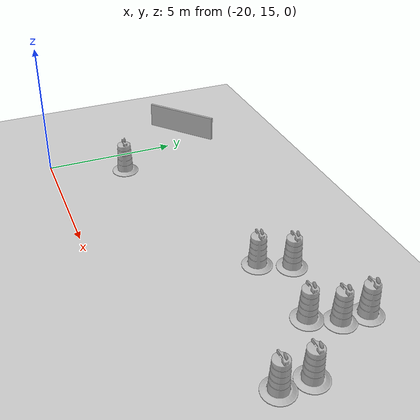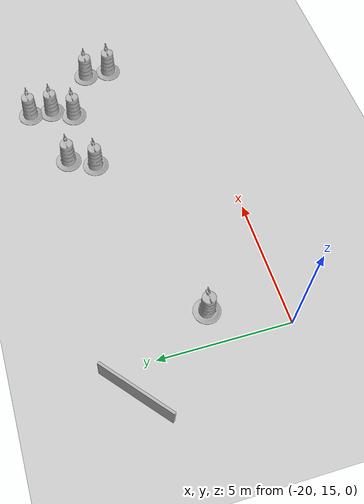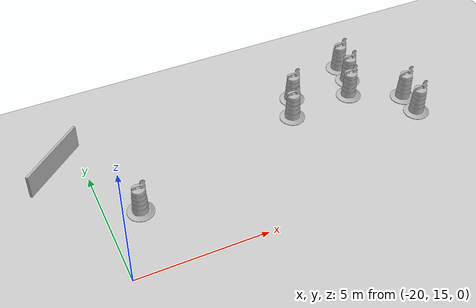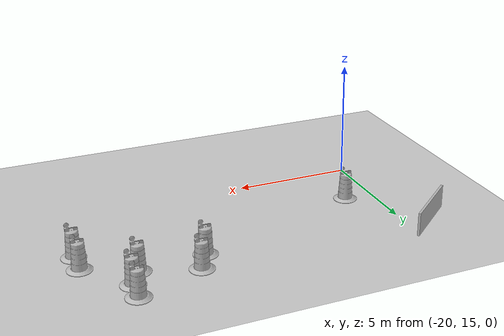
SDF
<sdf version="1.6">
 <world name="default">
  <model name="igvc_basic_ground">
   <static>1</static>
   <link name="link">
    <collision name="collision">
     <geometry><plane><normal>0 0 1</normal><size>50 50</size></plane></geometry>
     <surface><friction><ode><mu>100</mu><mu2>50</mu2></ode></friction></surface>
    </collision>
    <visual name="visual">
     <cast_shadows>0</cast_shadows>
     <geometry><plane><normal>0 0 1</normal><size>50 50</size></plane></geometry>
     <material>
      <script>
       <uri>model://igvc_basic_ground/materials/scripts</uri>
       <uri>model://igvc_basic_ground/materials/textures</uri>
       <name>igvc_pavement_old/Image</name>
      </script>
     </material>
    </visual>
    <velocity_decay><linear>0</linear><angular>0</angular></velocity_decay>
   </link>
  </model>
  <model name="Construction Barrel_28">
   <link name="link">
    <inertial>
     <pose>0 0 0.4 0 -0 0</pose>
     <mass>500</mass>
     <inertia><ixx>51.2096</ixx><iyy>51.2096</iyy><izz>25</izz><ixy>0</ixy><ixz>0</ixz><iyz>0</iyz></inertia>
    </inertial>
    <collision name="collision">
     <geometry><mesh><uri>model://construction_barrel/meshes/construction_barrel.dae</uri></mesh></geometry>
    </collision>
    <visual name="visual">
     <geometry><mesh><uri>model://construction_barrel/meshes/construction_barrel.dae</uri></mesh></geometry>
    </visual>
    <velocity_decay><linear>0</linear><angular>0</angular></velocity_decay>
   </link>
   <pose>-18.75 17.75 -1e-06 3e-06 -0 -0.000838</pose>
   <static>0</static>
  </model>
  <model name="Construction Barrel_29">
   <link name="link">
    <inertial>
     <pose>0 0 0.4 0 -0 0</pose>
     <mass>500</mass>
     <inertia><ixx>51.2096</ixx><iyy>51.2096</iyy><izz>25</izz><ixy>0</ixy><ixz>0</ixz><iyz>0</iyz></inertia>
    </inertial>
    <collision name="collision">
     <geometry><mesh><uri>model://construction_barrel/meshes/construction_barrel.dae</uri></mesh></geometry>
    </collision>
    <visual name="visual">
     <geometry><mesh><uri>model://construction_barrel/meshes/construction_barrel.dae</uri></mesh></geometry>
    </visual>
    <velocity_decay><linear>0</linear><angular>0</angular></velocity_decay>
   </link>
   <pose>-11.5 20 -0 0 0 -0.000817</pose>
   <static>0</static>
  </model>
  <model name="Construction Barrel_30">
   <link name="link">
    <inertial>
     <pose>0 0 0.4 0 -0 0</pose>
     <mass>500</mass>
     <inertia><ixx>51.2096</ixx><iyy>51.2096</iyy><izz>25</izz><ixy>0</ixy><ixz>0</ixz><iyz>0</iyz></inertia>
    </inertial>
    <collision name="collision">
     <geometry><mesh><uri>model://construction_barrel/meshes/construction_barrel.dae</uri></mesh></geometry>
    </collision>
    <visual name="visual">
     <geometry><mesh><uri>model://construction_barrel/meshes/construction_barrel.dae</uri></mesh></geometry>
    </visual>
    <velocity_decay><linear>0</linear><angular>0</angular></velocity_decay>
   </link>
   <pose>-11 21 -0 0 0 -0.001902</pose>
   <static>0</static>
  </model>
  <model name="Construction Barrel_31">
   <link name="link">
    <inertial>
     <pose>0 0 0.4 0 -0 0</pose>
     <mass>500</mass>
     <inertia><ixx>51.2096</ixx><iyy>51.2096</iyy><izz>25</izz><ixy>0</ixy><ixz>0</ixz><iyz>0</iyz></inertia>
    </inertial>
    <collision name="collision">
     <geometry><mesh><uri>model://construction_barrel/meshes/construction_barrel.dae</uri></mesh></geometry>
    </collision>
    <visual name="visual">
     <geometry><mesh><uri>model://construction_barrel/meshes/construction_barrel.dae</uri></mesh></geometry>
    </visual>
    <velocity_decay><linear>0</linear><angular>0</angular></velocity_decay>
   </link>
   <pose>-8.25 22 0 0 0 -0.000748</pose>
   <static>0</static>
  </model>
  <model name="Construction Barrel_33">
   <link name="link">
    <inertial>
     <pose>0 0 0.4 0 -0 0</pose>
     <mass>500</mass>
     <inertia><ixx>51.2096</ixx><iyy>51.2096</iyy><izz>25</izz><ixy>0</ixy><ixz>0</ixz><iyz>0</iyz></inertia>
    </inertial>
    <collision name="collision">
     <geometry><mesh><uri>model://construction_barrel/meshes/construction_barrel.dae</uri></mesh></geometry>
    </collision>
    <visual name="visual">
     <geometry><mesh><uri>model://construction_barrel/meshes/construction_barrel.dae</uri></mesh></geometry>
    </visual>
    <velocity_decay><linear>0</linear><angular>0</angular></velocity_decay>
   </link>
   <pose>-6.75 18.25 -4e-06 -5e-06 -7e-06 -0.000654</pose>
   <static>0</static>
  </model>
  <model name="Construction Barrel_34">
   <link name="link">
    <inertial>
     <pose>0 0 0.4 0 -0 0</pose>
     <mass>500</mass>
     <inertia><ixx>51.2096</ixx><iyy>51.2096</iyy><izz>25</izz><ixy>0</ixy><ixz>0</ixz><iyz>0</iyz></inertia>
    </inertial>
    <collision name="collision">
     <geometry><mesh><uri>model://construction_barrel/meshes/construction_barrel.dae</uri></mesh></geometry>
    </collision>
    <visual name="visual">
     <geometry><mesh><uri>model://construction_barrel/meshes/construction_barrel.dae</uri></mesh></geometry>
    </visual>
    <velocity_decay><linear>0</linear><angular>0</angular></velocity_decay>
   </link>
   <pose>-8.3 21.1 -4e-06 -5e-06 -7e-06 -0.000625</pose>
   <static>0</static>
  </model>
  <model name="Construction Barrel_35">
   <link name="link">
    <inertial>
     <pose>0 0 0.4 0 -0 0</pose>
     <mass>500</mass>
     <inertia><ixx>51.2096</ixx><iyy>51.2096</iyy><izz>25</izz><ixy>0</ixy><ixz>0</ixz><iyz>0</iyz></inertia>
    </inertial>
    <collision name="collision">
     <geometry><mesh><uri>model://construction_barrel/meshes/construction_barrel.dae</uri></mesh></geometry>
    </collision>
    <visual name="visual">
     <geometry><mesh><uri>model://construction_barrel/meshes/construction_barrel.dae</uri></mesh></geometry>
    </visual>
    <velocity_decay><linear>0</linear><angular>0</angular></velocity_decay>
   </link>
   <pose>-8.75 20.25 -1e-06 -1e-06 -0 -0.004196</pose>
   <static>0</static>
  </model>
  <model name="Construction Barrel_36">
   <link name="link">
    <inertial>
     <pose>0 0 0.4 0 -0 0</pose>
     <mass>500</mass>
     <inertia><ixx>51.2096</ixx><iyy>51.2096</iyy><izz>25</izz><ixy>0</ixy><ixz>0</ixz><iyz>0</iyz></inertia>
    </inertial>
    <collision name="collision">
     <geometry><mesh><uri>model://construction_barrel/meshes/construction_barrel.dae</uri></mesh></geometry>
    </collision>
    <visual name="visual">
     <geometry><mesh><uri>model://construction_barrel/meshes/construction_barrel.dae</uri></mesh></geometry>
    </visual>
    <velocity_decay><linear>0</linear><angular>0</angular></velocity_decay>
   </link>
   <pose>-6.75 19.25 -9e-06 -3e-06 -6e-06 -0.005015</pose>
   <static>0</static>
  </model>
  <model name="barricade_4">
   <static>1</static>
   <pose>-21 21 0.5 0 -0 0.7</pose>
   <link name="link">
    <collision name="collision"><geometry><box><size>3 0.1 1</size></box></geometry></collision>
    <visual name="visual"><geometry><box><size>3 0.1 1</size></box></geometry></visual>
   </link>
  </model>
 </world>
</sdf>
